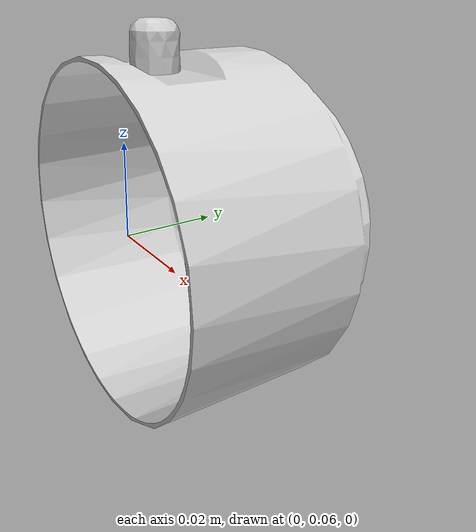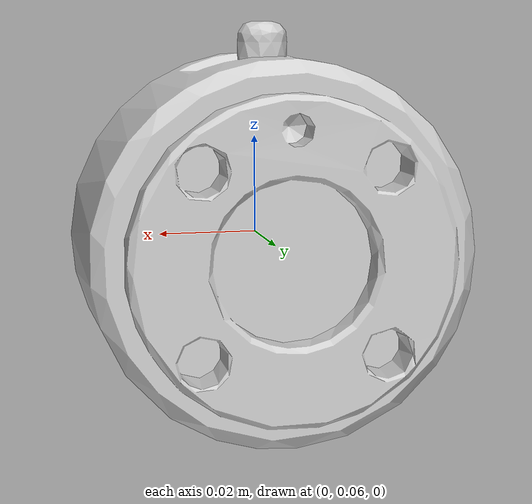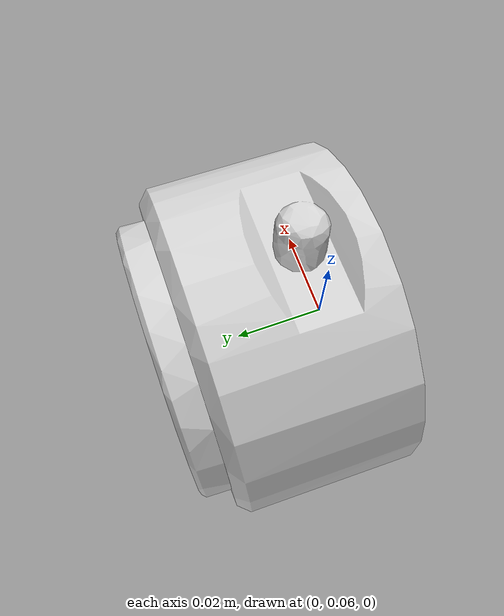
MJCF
<mujoco model="wrist3">
  <default>
    <default class="visual">
      <geom group="2" type="mesh" contype="0" conaffinity="0"/>
    </default>
    <default class="collision">
      <geom group="3" type="mesh"/>
    </default>
  </default>
  <asset>
    <material name="material_wrist3_0" specular="0.20000000000000004" shininess="1.0" rgba="0.81960784 0.81960784 0.81960784 1.0"/>
    <mesh file="wrist3.obj"/>
  </asset>
  <worldbody>
    <body name="wrist3">
      <geom material="material_wrist3_0" mesh="wrist3" class="visual"/>
      <geom mesh="wrist3" class="collision"/>
    </body>
  </worldbody>
</mujoco>
